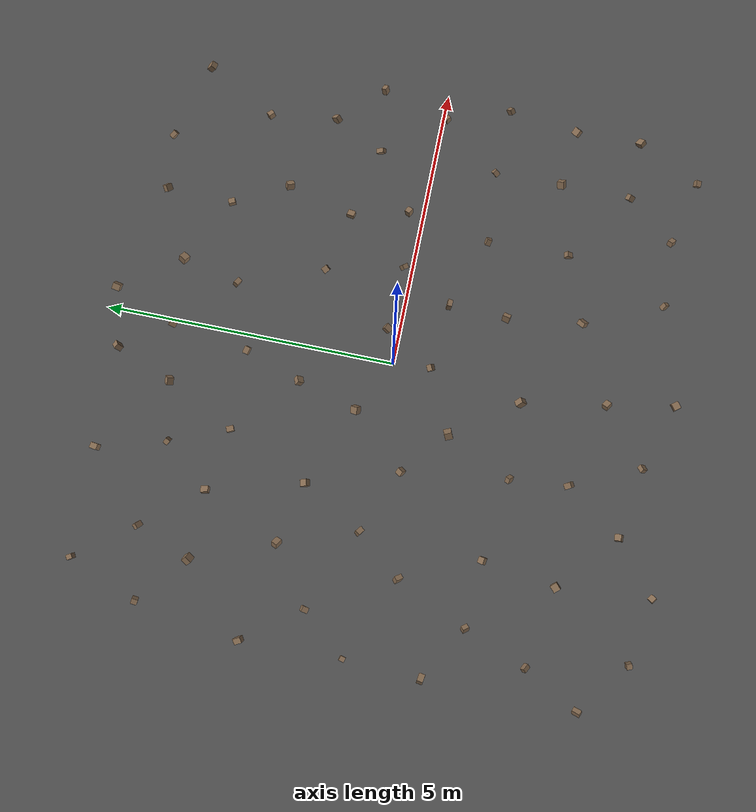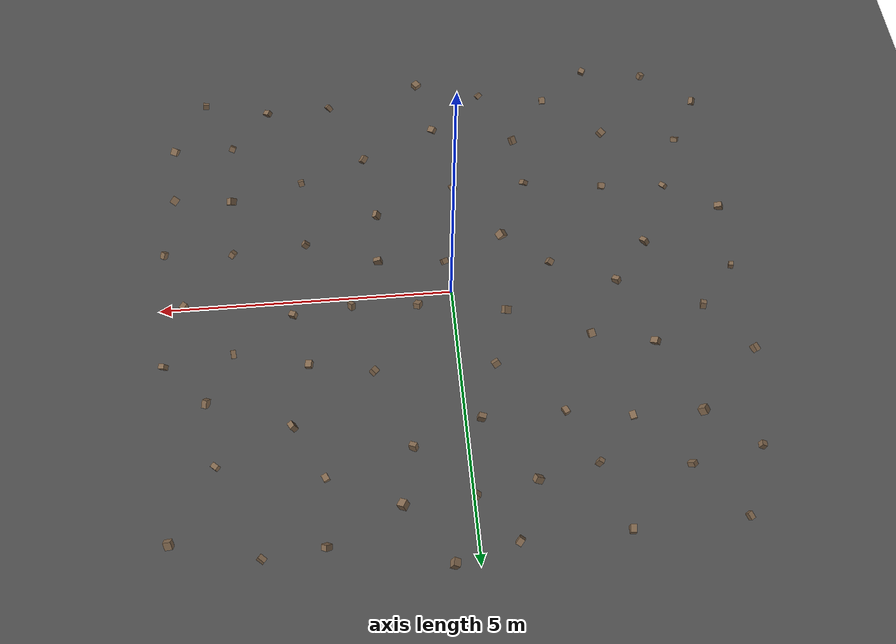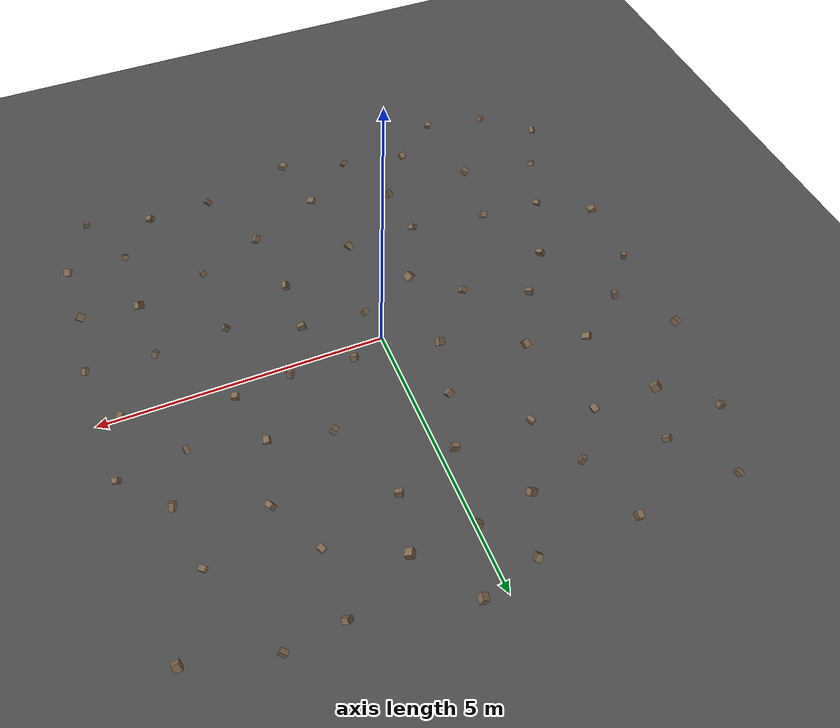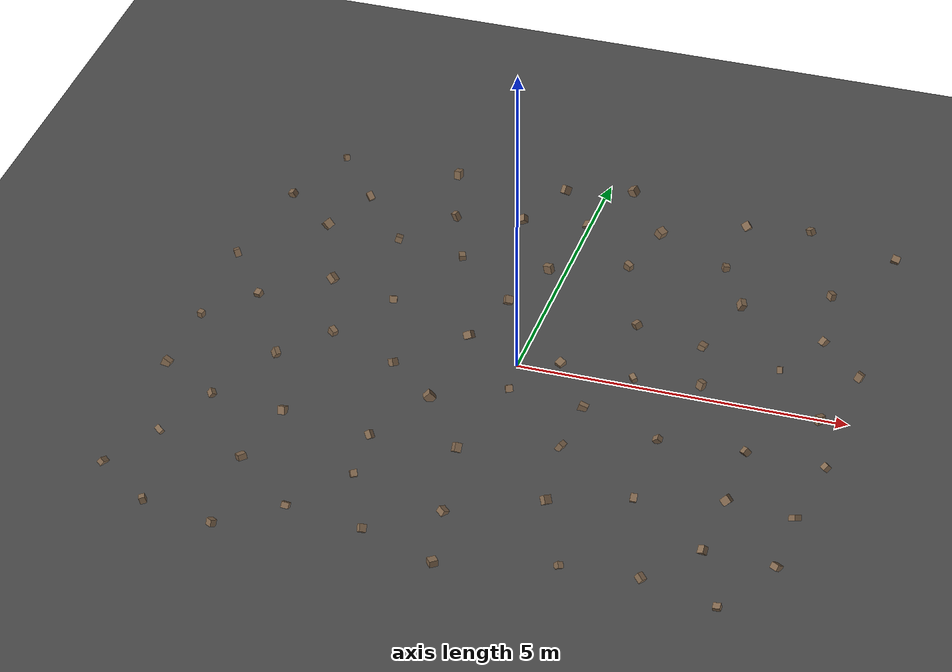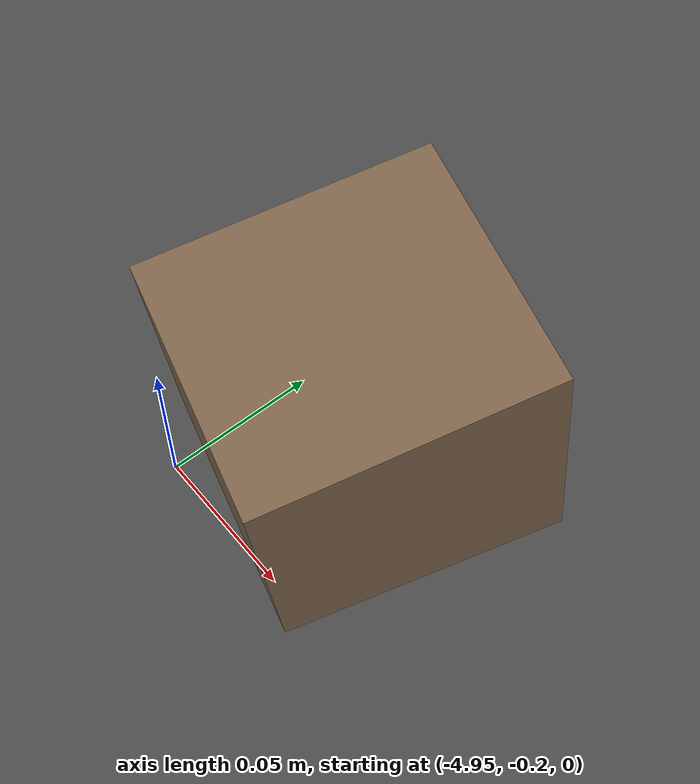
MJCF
<mujoco model="rocky_terrain_scene">
    <compiler angle="radian" inertiafromgeom="true" />
    <option timestep="0.002" gravity="0 0 -9.81" />

    <worldbody>
        <light name="sunlight" pos="5 5 5" dir="-1 -1 -1" diffuse="1 1 1" specular="0.5 0.5 0.5" ambient="0.5 0.5 0.5" />

        <geom name="ground_plane" type="plane" size="50 50 0.1" rgba="0.3 0.3 0.3 1" />

        <body name="rocky_terrain_body">

        <geom name="rock1" type="box" size="0.054636935396761406 0.058329609300983604 0.04777286924092784" pos="-4.2774495841348426 0.6071512696025527 0.022169759944474624" quat="0.2350880151192777 0.3151290274690693 0.17646907192508476 0.2733138854865683" rgba="0.5 0.4 0.3 1" friction="0.8359936677107859 0.8993246271962594 0.9098149046036755" /><geom name="rock2" type="box" size="0.0616231270720574 0.04026895764304172 0.050229003509067505" pos="-1.529011411628142 -2.2798997561753587 0.025801822370177415" quat="0.16081866630827799 0.25000550468613547 0.06688661082265963 0.522289218182927" rgba="0.5 0.4 0.3 1" friction="0.7964169710135849 0.8812684859295807 0.8438520066002636" /><geom name="rock3" type="box" size="0.06109023376916112 0.04762369812889762 0.04890002890711285" pos="2.511041675130902 -2.5998359663874915 0.02023005874833989" quat="0.1312588464899865 0.3381090451928159 0.2116267300578984 0.3190053782592992" rgba="0.5 0.4 0.3 1" friction="0.8856515186263858 0.8961691088604472 0.8416121644185417" /><geom name="rock4" type="box" size="0.06235642892448221 0.04414133679330586 0.06443954352106966" pos="-3.111907655789338 -3.3288648384823105 0.04499652467582706" quat="0.21261787546513858 0.0913586690883801 0.35833531298995547 0.3376881424565259" rgba="0.5 0.4 0.3 1" friction="0.830971281866832 0.8825018592815287 0.9086040181959115" /><geom name="rock5" type="box" size="0.05275350159541847 0.06319616227880206 0.04184659164888705" pos="1.7307547645700039 0.15754466041724768 0.029491472998957862" quat="0.12756474620802438 0.18933109000419748 0.2673839759360966 0.4157201878516815" rgba="0.5 0.4 0.3 1" friction="0.833965312839687 0.8883421530523119 0.8632641953676486" /><geom name="rock6" type="box" size="0.0434831644283581 0.06469823812807063 0.06088985603751235" pos="0.8747845107838659 2.9260986887540517 0.04162713288541383" quat="0.2621341741107163 0.36242953828268587 0.18944861960317153 0.18598766800342637" rgba="0.5 0.4 0.3 1" friction="0.8709211859445326 0.9375309774467389 0.9386243896568561" /><geom name="rock7" type="box" size="0.0508835480069658 0.055684360490636305 0.045891642822650916" pos="3.754813997916239 -1.0902173723417672 0.026933981992292053" quat="0.32361414337228894 0.333204489271506 0.05260162266552713 0.290579744690678" rgba="0.5 0.4 0.3 1" friction="0.8358955097108074 0.9214644013149942 0.8423298863645602" /><geom name="rock8" type="box" size="0.06361582126342358 0.06873124300559781 0.04658845048790057" pos="-0.26556772915759375 2.492075379732065 0.051872911148112655" quat="0.10243903529803677 0.004794285241244499 0.44719843720942387 0.4455682422512948" rgba="0.5 0.4 0.3 1" friction="0.8124879028531762 0.8750897625922656 0.8444635829636636" /><geom name="rock9" type="box" size="0.06311249282708109 0.04794681892042334 0.047939388293730886" pos="3.097051476987417 -4.318570266525725 0.03892097536856648" quat="0.17914265992908046 0.17688212187736396 0.04317668605979687 0.6007985321337587" rgba="0.5 0.4 0.3 1" friction="0.8004896459114901 0.8630525394486812 0.8364153230908964" /><geom name="rock10" type="box" size="0.06472329176262949 0.06455006827436385 0.04106619038510803" pos="-3.4964537794698125 -0.7853290815839111 0.04126123915229335" quat="0.06804960419569761 0.2511433694252672 0.3458829965888478 0.3349240297901873" rgba="0.5 0.4 0.3 1" friction="0.7873816187931082 0.9104130305256424 0.8579993339007503" /><geom name="rock11" type="box" size="0.04065479773879205 0.04087342515501484 0.06095953360050922" pos="-4.46119490592796 -3.0672441426586827 0.032694040511735356" quat="0.22555356658972517 0.4358986068500454 0.10698464492976872 0.23156318163046083" rgba="0.5 0.4 0.3 1" friction="0.8261485198311266 0.9537619321264871 0.9421428699334078" /><geom name="rock12" type="box" size="0.0671676490165626 0.04446086462549484 0.06319906629751222" pos="1.352381410998281 -3.037850924614014 0.052863869396260796" quat="0.22319401084098714 0.4756975126077529 0.290065170687776 0.011043305863484" rgba="0.5 0.4 0.3 1" friction="0.8023441987252079 0.9034957010493948 0.9169719297272578" /><geom name="rock13" type="box" size="0.06743197491075312 0.04187777894848155 0.06399975876667824" pos="4.801740198701026 -2.369878865241306 0.027831858198172507" quat="0.45631101513709654 0.19947641503443514 0.1976639167999274 0.146548653028541" rgba="0.5 0.4 0.3 1" friction="0.8784992396275167 0.9785334179009899 0.8175858441383504" /><geom name="rock14" type="box" size="0.06624003981535168 0.05412301332216649 0.06379336859679195" pos="-0.8986805130807181 0.46497909847401964 0.056978549126550704" quat="0.39568616625910885 0.11447965596239501 0.2583403374953739 0.23149384028312225" rgba="0.5 0.4 0.3 1" friction="0.7848082030811707 0.9287015204607088 0.8449074096389458" /><geom name="rock15" type="box" size="0.04776621838544256 0.051938708548318224 0.05423989761494767" pos="0.0651429212024226 -0.6354115682791477 0.043961329553432696" quat="0.29859127452088935 0.09721063792262633 0.3516413125834662 0.2525567749730181" rgba="0.5 0.4 0.3 1" friction="0.8409855096102589 0.9465123663170142 0.9308317886966242" /><geom name="rock16" type="box" size="0.06541323175003881 0.04541959459381184 0.0532742660205437" pos="-2.7173289015647373 2.6411553019047833 0.024646638298208484" quat="0.2276237445583598 0.23139742882201506 0.33194961911048837 0.2090292075091368" rgba="0.5 0.4 0.3 1" friction="0.7671871942780586 0.9252090507367476 0.8695067843403551" /><geom name="rock17" type="box" size="0.06389680715263527 0.042281067845250216 0.05517113866760972" pos="2.491217159460372 1.2566409379137786 0.02100466187321246" quat="0.24933004857359894 0.29804482454135595 0.2711003985763142 0.1815247283087309" rgba="0.5 0.4 0.3 1" friction="0.8632400583826033 0.890991244727873 0.9108478700136107" /><geom name="rock18" type="box" size="0.06629352457089842 0.06468855345824455 0.06318381443338403" pos="1.1101457924629932 3.924732178419978 0.05831734552588197" quat="0.25258184978804976 0.3834070365491387 0.2222201124274224 0.1417910012353891" rgba="0.5 0.4 0.3 1" friction="0.8957013818375082 0.9868223922182169 0.84732700896394" /><geom name="rock19" type="box" size="0.046043534236742734 0.06527549345624223 0.06765546413317754" pos="2.7864016187091503 2.416918139591261 0.058979267595088286" quat="0.36245567378208665 0.4346595604934769 0.19902336559180858 0.0038614001326278654" rgba="0.5 0.4 0.3 1" friction="0.8771113965356644 0.9338352309915476 0.8148093907171996" /><geom name="rock20" type="box" size="0.05362995138181656 0.05634367026414677 0.051429475963916275" pos="-1.7693948273062485 -0.4848774844663426 0.027980869644978052" quat="0.434765583998462 0.19619452842848512 0.17541243809055504 0.19362744948249785" rgba="0.5 0.4 0.3 1" friction="0.87104347587971 0.874367635215677 0.9207711180639643" /><geom name="rock21" type="box" size="0.04786808448081176 0.04616751531413758 0.05507079654932794" pos="4.263684428403936 -4.611790238906579 0.02404093725443973" quat="0.21520120851865548 0.2851272400311845 0.18994087991912312 0.309730671531037" rgba="0.5 0.4 0.3 1" friction="0.8472622305039824 0.9325189519502318 0.9201416331808226" /><geom name="rock22" type="box" size="0.06388723767890225 0.06628935148471315 0.041333959388938836" pos="1.1878978605920656 -1.742890617656776 0.03408095199655808" quat="0.22911438498996886 0.3492822612409291 0.28642152829435663 0.13518182547474547" rgba="0.5 0.4 0.3 1" friction="0.8614983352937389 0.9936909760809014 0.8330070354904854" /><geom name="rock23" type="box" size="0.06736966590765622 0.06899621853838106 0.05193373032782299" pos="-0.22359056270031807 -2.2391011285628437 0.05507242634507144" quat="0.03288918844433304 0.4022014384941686 0.24924298666489553 0.31566638639660277" rgba="0.5 0.4 0.3 1" friction="0.846456876378456 0.9619928281326761 0.9147099640747755" /><geom name="rock24" type="box" size="0.06225731036462996 0.049229689223019416 0.05738940672004783" pos="0.5958101776763405 0.21942219011324848 0.02718344875139441" quat="0.22991449496017605 0.391216845735177 0.1546107503618188 0.2242579089428281" rgba="0.5 0.4 0.3 1" friction="0.7546015420337684 0.9854775775592819 0.8975058755032671" /><geom name="rock25" type="box" size="0.05623070934878568 0.0605388905931159 0.051856572961759904" pos="-2.927174432872517 -2.0826319061316645 0.0254226372854053" quat="0.07017308434380136 0.016835386397942926 0.5629697313082924 0.3500217979499633" rgba="0.5 0.4 0.3 1" friction="0.798190300460896 0.9182913864344631 0.9496700008495229" /><geom name="rock26" type="box" size="0.046480063682035506 0.0448481305892066 0.05667245278473393" pos="2.471559021401365 -1.188978372761965 0.040985775751938375" quat="0.6002587958532158 0.08968822645684783 0.2678270897910166 0.0422258878989197" rgba="0.5 0.4 0.3 1" friction="0.8080129613890743 0.9026197602681754 0.8660493548855461" /><geom name="rock27" type="box" size="0.054950274023106274 0.056791533926893026 0.04023929783627187" pos="-0.9160543127109255 -4.421464900118305 0.0595918976207913" quat="0.522248898977365 0.1955073326753523 0.17782163519216465 0.10442213315511804" rgba="0.5 0.4 0.3 1" friction="0.8008678705030265 0.9200952819357274 0.8441894199480894" /><geom name="rock28" type="box" size="0.047576302933930094 0.05378603361716812 0.04623494370710646" pos="-4.090117536067322 -4.687117689263362 0.05145830589127749" quat="0.2300138173594193 0.17263730171205457 0.2511004297033202 0.34624845122520603" rgba="0.5 0.4 0.3 1" friction="0.8099202664026427 0.9490528173515023 0.829191352865321" /><geom name="rock29" type="box" size="0.06297740688512331 0.06616968634717937 0.06530290061382905" pos="-3.8735056232172305 2.6495764506534814 0.057509517471284535" quat="0.4557781262239588 0.23766523270826365 0.02401792126038705 0.2825387198073905" rgba="0.5 0.4 0.3 1" friction="0.8488819273691517 0.934444271458384 0.9397514557679242" /><geom name="rock30" type="box" size="0.04090960012828165 0.04501629575738608 0.06059979848336133" pos="-4.222283116746502 4.540039889047174 0.047141657318104296" quat="0.4852827145098778 0.29780280592277675 0.07637514084967525 0.1405393387176702" rgba="0.5 0.4 0.3 1" friction="0.7636374140535426 0.8984444012482049 0.825523047397404" /><geom name="rock31" type="box" size="0.061455677298173195 0.04762883970950968 0.04216553971105781" pos="1.9366490475174478 -4.371728412843604 0.022785917970682995" quat="0.2712908960110367 0.011395172867107357 0.485563294389567 0.23175063673228902" rgba="0.5 0.4 0.3 1" friction="0.8182861537066854 0.9449301443105987 0.9420486700843903" /><geom name="rock32" type="box" size="0.054720308279847474 0.04930098874452711 0.06315188325978194" pos="0.031918995083773716 -3.673770200328322 0.023489094607753287" quat="0.31856335756473847 0.33230332889781405 0.26802751670914937 0.08110579682829798" rgba="0.5 0.4 0.3 1" friction="0.7722800301112408 0.9961986458732355 0.8272896847333742" /><geom name="rock33" type="box" size="0.06578778437339078 0.05026836733495173 0.057592909749439994" pos="-2.274818779970963 1.0389010157807332 0.04173066898255022" quat="0.28947555659909524 0.14466688053966967 0.3560907613219295 0.20976680153930552" rgba="0.5 0.4 0.3 1" friction="0.8003537158483034 0.962575602284916 0.8566343543385475" /><geom name="rock34" type="box" size="0.04470637117058844 0.05574283008972804 0.05552522243290314" pos="4.021499109595766 3.0406379438739037 0.05939342990569968" quat="0.362946595627301 0.33096060435722363 0.1971104170186196 0.10898238299685575" rgba="0.5 0.4 0.3 1" friction="0.8056958189041913 0.9107954888052233 0.9288863290629934" /><geom name="rock35" type="box" size="0.06463538561580019 0.06629307584683408 0.04449299141046651" pos="4.589753563854471 -0.03915500139549444 0.04366067825249534" quat="0.35158277611408 0.3120228540687378 0.1914946689577505 0.14489970085943174" rgba="0.5 0.4 0.3 1" friction="0.8606307429997796 0.8528160014306647 0.9227367707976688" /><geom name="rock36" type="box" size="0.06808771930132966 0.056913245616161165 0.06399048340887864" pos="0.388789725608536 4.9451995891139635 0.04044551397300641" quat="0.09799752916472831 0.43829703586013746 0.36295865870724614 0.10074677626788804" rgba="0.5 0.4 0.3 1" friction="0.8318866667435679 0.9686444175678283 0.9311561719607746" /><geom name="rock37" type="box" size="0.06229751101144884 0.04968223548018439 0.06096602281850695" pos="-0.03652623140878131 3.842242567097177 0.030385344558099863" quat="0.3232804625750125 0.2587960383027076 0.08492383470648439 0.33299966441579554" rgba="0.5 0.4 0.3 1" friction="0.8375186139243951 0.9368223674205479 0.8293463418420624" /><geom name="rock38" type="box" size="0.049078537930482787 0.058411200313129574 0.05263611006597936" pos="3.7567270581736416 -3.486772655372313 0.05212728224282524" quat="0.4544643408577101 0.1665912879074939 0.28633279737901934 0.09261157385577673" rgba="0.5 0.4 0.3 1" friction="0.8492941070715047 0.9823648797871961 0.9021153316020334" /><geom name="rock39" type="box" size="0.05101275578852722 0.0674327089129397 0.06476922439149402" pos="-4.963415701408049 -1.4559238849078748 0.022610507286703517" quat="0.4528418122159589 0.0748200862191265 0.09272290025602524 0.3796152013088893" rgba="0.5 0.4 0.3 1" friction="0.8774850372308972 0.8515549900587327 0.9259107151107127" /><geom name="rock40" type="box" size="0.04863882845862674 0.06472119462022463 0.062363858626272944" pos="-0.6331870834222109 4.664436973842923 0.0476380191352553" quat="0.14752644279708613 0.11433978717201053 0.5167530636990254 0.22138070633187795" rgba="0.5 0.4 0.3 1" friction="0.8856491506602449 0.8898400300275303 0.9346041492810149" /><geom name="rock41" type="box" size="0.06793162429967932 0.045856540957923096 0.04276936503538138" pos="-4.9650850988642805 -3.989663460973153 0.021084875250024056" quat="0.2641760217125316 0.3337972434793812 0.31181615294853127 0.09021058185955595" rgba="0.5 0.4 0.3 1" friction="0.7944526154951812 0.9291790748249315 0.9298849770299837" /><geom name="rock42" type="box" size="0.05086642023214226 0.052037993075529226 0.05216215157831479" pos="-2.979985453522035 -4.896945509241746 0.0492315875305513" quat="0.3706435522049068 0.28319699615714194 0.22083055005204688 0.1253289015859044" rgba="0.5 0.4 0.3 1" friction="0.8149092045232742 0.9249737096855769 0.9473587457419307" /><geom name="rock43" type="box" size="0.053623576245743584 0.053176713575301314 0.06879639525697025" pos="-3.3252259965525424 1.2848551577017346 0.053160314076922205" quat="0.25724636439025195 0.36774957770137656 0.29035871530437346 0.08464534260399799" rgba="0.5 0.4 0.3 1" friction="0.8415652964938323 0.8842608843069264 0.884735817497273" /><geom name="rock44" type="box" size="0.0473623908801972 0.06292105644757125 0.060292559658571936" pos="2.320606781329894 4.520777954967212 0.037344040030708556" quat="0.4081987116444072 0.030128571085866397 0.27892842540646473 0.28274429186326167" rgba="0.5 0.4 0.3 1" friction="0.7775694737639446 0.9572108783366451 0.8122758807536072" /><geom name="rock45" type="box" size="0.04118097211044396 0.06715907394024816 0.05402739894886505" pos="4.899794765287556 1.13343132523001 0.05488898829225243" quat="0.275881090109516 0.2915788735010456 0.2998664899304197 0.13267354645901866" rgba="0.5 0.4 0.3 1" friction="0.8020175262605563 0.9775144568855296 0.822834448442764" /><geom name="rock46" type="box" size="0.0623893006029157 0.054856213080036215 0.06440874851083683" pos="0.24756795938179277 -4.814788340385668 0.025779614172559046" quat="0.1717633849703233 0.15658926410935986 0.3400014460828441 0.33164590483747286" rgba="0.5 0.4 0.3 1" friction="0.7615290009601339 0.9247989182658741 0.8983764204649426" /><geom name="rock47" type="box" size="0.06774755568137603 0.056051013890537446 0.04777795819657017" pos="-4.964489644202823 1.5467904570496005 0.032222244029586095" quat="0.26233415901190893 0.10534318187627914 0.3168416176127537 0.3154810414990582" rgba="0.5 0.4 0.3 1" friction="0.7867808711266956 0.908176958815184 0.8050059977609818" /><geom name="rock48" type="box" size="0.047075966189171856 0.06449799994424296 0.054544853014169184" pos="2.728657627132584 0.2717102945691714 0.05156335785488718" quat="0.3072617798727789 0.3059933314478737 0.23827046699269058 0.1484744216866567" rgba="0.5 0.4 0.3 1" friction="0.8673563966763208 0.9392595259988269 0.9300374457762486" /><geom name="rock49" type="box" size="0.04705102658801792 0.06654127895659306 0.041811497238475694" pos="-3.5037317523130795 3.5874933894323906 0.0559348877183649" quat="0.5230739888394864 0.2312868978635396 0.02171411594404076 0.22392499735293328" rgba="0.5 0.4 0.3 1" friction="0.7594377130295569 0.9856661863962197 0.895632469976854" /><geom name="rock50" type="box" size="0.05548624016294366 0.04911435830779644 0.05670344041810641" pos="1.4150094626140604 1.4797568147468354 0.039215142703509794" quat="0.3793452698688999 0.312267150135409 0.08632963270266031 0.22205794729303077" rgba="0.5 0.4 0.3 1" friction="0.8347215350270039 0.985382488332004 0.8736570291469135" /><geom name="rock51" type="box" size="0.04801488693333699 0.043703514927422 0.06214023301525824" pos="-1.6414726180295292 2.465994199758164 0.020282242745721494" quat="0.4111877952595378 0.4075851664172868 0.09974451671298129 0.08148252161019406" rgba="0.5 0.4 0.3 1" friction="0.8572701383140772 0.8928422909681506 0.9262498747502497" /><geom name="rock52" type="box" size="0.04222594808920713 0.050567018636727024 0.058507845152585614" pos="4.947653025073063 -1.1459458161733727 0.05668771718624757" quat="0.03205216395802435 0.20328340437689135 0.5475578356327591 0.21710659603232524" rgba="0.5 0.4 0.3 1" friction="0.8888709906119215 0.9363707134822666 0.8379998190450143" /><geom name="rock53" type="box" size="0.056374190838096624 0.049198840187034854 0.040667432357802555" pos="-4.050871785377657 -2.0041415666895057 0.03300587931772429" quat="0.06321441502388987 0.25507706095186716 0.40868693465631173 0.2730215893679313" rgba="0.5 0.4 0.3 1" friction="0.814496855085961 0.9027869378226733 0.8206056147539261" /><geom name="rock54" type="box" size="0.04198767783694761 0.04900848461237181 0.06254392305481879" pos="3.3090824434873376 4.64613981598302 0.056727881410819844" quat="0.3813703596679396 0.28022294447930424 0.11544300360344441 0.22296369224931184" rgba="0.5 0.4 0.3 1" friction="0.8722890231479323 0.9839535181649752 0.8553002748356843" /><geom name="rock55" type="box" size="0.06379740898563332 0.06743045449596964 0.05005176234486386" pos="-2.3808764822055606 4.612446956358843 0.040795708734715184" quat="0.297885501599963 0.23702161562189772 0.24664654835387195 0.2184463344242673" rgba="0.5 0.4 0.3 1" friction="0.8819917314578097 0.9688443984280518 0.9490329075178019" /><geom name="rock56" type="box" size="0.05959984046091389 0.04866935373073396 0.06295796688727782" pos="-0.6047526421773739 1.5061894489695016 0.058019082270041725" quat="0.06872397752801132 0.3564924063576624 0.2653311239963397 0.30945249211798653" rgba="0.5 0.4 0.3 1" friction="0.7730190313723129 0.9031037454916429 0.9412549117188769" /><geom name="rock57" type="box" size="0.05512585539938415 0.05566411923402103 0.06750950211022884" pos="-1.0403620804495284 3.6619698082783323 0.057410635519057285" quat="0.22036369435665004 0.24335702759322975 0.11702252997574628 0.41925674807437385" rgba="0.5 0.4 0.3 1" friction="0.798090172810945 0.9970014842206931 0.9224610365484998" /><geom name="rock58" type="box" size="0.06752063474102692 0.053109451858718085 0.06349343523322498" pos="4.726276278733742 4.288465116983486 0.039594181469277984" quat="0.3308278490890641 0.14638036277210484 0.4246095342094287 0.09818225392940232" rgba="0.5 0.4 0.3 1" friction="0.8134172572481172 0.9233492384143572 0.9309879221723447" /><geom name="rock59" type="box" size="0.06027031000328435 0.05967927246723822 0.06622855166841923" pos="3.7778552737083224 -2.2652340992220523 0.025842948744367322" quat="0.4051901721685931 0.06844619307815765 0.22066508271551663 0.3056985520377327" rgba="0.5 0.4 0.3 1" friction="0.8877090577118011 0.9209748911951794 0.8671535436651798" /><geom name="rock60" type="box" size="0.044665556583262205 0.058479909809258004 0.054809354476504715" pos="-2.118030825505403 -4.216028811335708 0.043418113759202334" quat="0.10424669205541588 0.4080054595957804 0.12073010878679125 0.36701773956201256" rgba="0.5 0.4 0.3 1" friction="0.8116498525345043 0.9890524907068298 0.8698351721006801" /><geom name="rock61" type="box" size="0.048292964203504124 0.0689009184216254 0.041417322826158134" pos="3.7396501782491747 0.9763520985409171 0.048565362167447654" quat="0.08579618801404405 0.36487267834301346 0.14516426258115261 0.4041668710617899" rgba="0.5 0.4 0.3 1" friction="0.8388233535011435 0.8730794916062035 0.8996236777149269" /><geom name="rock62" type="box" size="0.041523958871561746 0.06970324087459945 0.06736053069417494" pos="1.2229557561242501 -0.7377581343089066 0.02227254826943254" quat="0.20025463315609793 0.3086694406829738 0.2707849475529108 0.22029097860801733" rgba="0.5 0.4 0.3 1" friction="0.8879381496150465 0.9350607443604312 0.9345780663861964" /><geom name="rock63" type="box" size="0.05901098641729948 0.04985341678734597 0.04399506012625919" pos="2.29420820065931 3.3571226296929737 0.02219439469389319" quat="0.362039527650842 0.011613069313330435 0.06594606706092884 0.5604013359748987" rgba="0.5 0.4 0.3 1" friction="0.7534037411513044 0.9406903102225431 0.8642843253494502" /><geom name="rock64" type="box" size="0.06870964170308061 0.04853780422201735 0.049780316058271726" pos="-1.4357155560276311 -3.2657117047788997 0.0598292008364031" quat="0.3212372294449723 0.0556910474780386 0.37648223604914616 0.24658948702784292" rgba="0.5 0.4 0.3 1" friction="0.7658672704125804 0.8718998037339355 0.8762673390462985" /><geom name="rock65" type="box" size="0.06054192061461511 0.0688156376538847 0.043853612974250465" pos="4.186211079087208 1.8698923587371734 0.037089964847255866" quat="0.22115812927090578 0.4264035956037253 0.07228462037844298 0.2801536547469259" rgba="0.5 0.4 0.3 1" friction="0.7823121373763979 0.9934863725490308 0.8245679593277663" /><geom name="rock66" type="box" size="0.046634400469890085 0.06755741619895755 0.042205010382231414" pos="-2.0491234174442905 3.4440188072655094 0.056528016559601865" quat="0.17649412784564666 0.01902676077829882 0.3819593427330733 0.42251976864298124" rgba="0.5 0.4 0.3 1" friction="0.8545907603851813 0.982619747449247 0.9083778040174" /><geom name="rock67" type="box" size="0.06259925780772323 0.046061381986622914 0.06356596620824657" pos="4.822077821978018 -3.517541390084248 0.028604843098552823" quat="0.0634039446991691 0.14111687984289142 0.5222038041238443 0.2732753713340952" rgba="0.5 0.4 0.3 1" friction="0.8090929391338306 0.9279184482890341 0.9223934212927625" /><geom name="rock68" type="box" size="0.04489412666248553 0.04606852035275529 0.04193040207786848" pos="-4.913694362568029 -0.15667746479118705 0.037436978252514186" quat="0.26912567901645623 0.29904943183051774 0.20350715024117494 0.22831773891185103" rgba="0.5 0.4 0.3 1" friction="0.8729188869136593 0.8500483672044549 0.8418645617782293" /><geom name="rock69" type="box" size="0.05081010967821568 0.0487265108298246 0.049783313830832086" pos="-4.69446554003631 3.340689814406396 0.03290543907892769" quat="0.06993239787473525 0.4313710297928213 0.3765582904970186 0.12213828183542477" rgba="0.5 0.4 0.3 1" friction="0.8986245393179817 0.9611985249174689 0.8850874883975848" /><geom name="rock70" type="box" size="0.06497133060790772 0.0649042782163517 0.06917792753106657" pos="-0.9920861458573249 -1.1407245635116414 0.027046703767796217" quat="0.13791314249448572 0.27234787157758167 0.4384460431727476 0.1512929427551851" rgba="0.5 0.4 0.3 1" friction="0.8842185108072688 0.9099899698447007 0.8730311451540053" /><geom name="rock71" type="box" size="0.0617990133064099 0.06086825539356214 0.045938532154753985" pos="-2.8722649576688744 -0.011682970232506307 0.02992378794101996" quat="0.064722984958931 0.18852622123105137 0.3539673848400206 0.392783408969997" rgba="0.5 0.4 0.3 1" friction="0.8151800101200211 0.9587236259516375 0.8644806243355718" /></body>
    </worldbody>
</mujoco>
